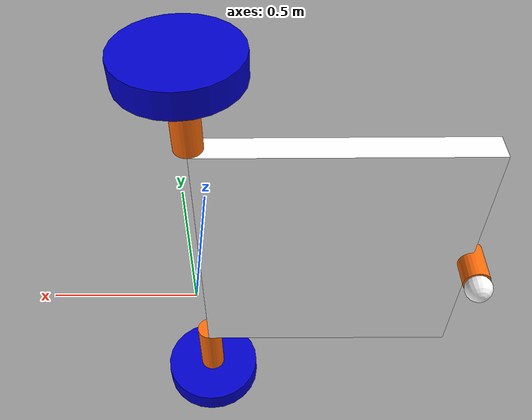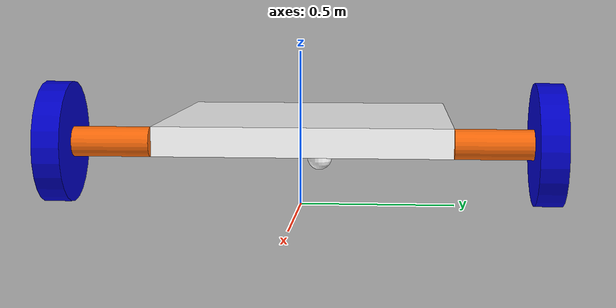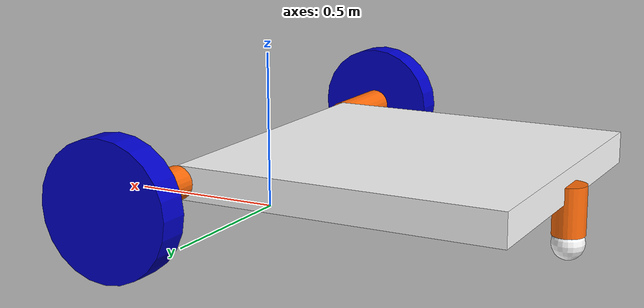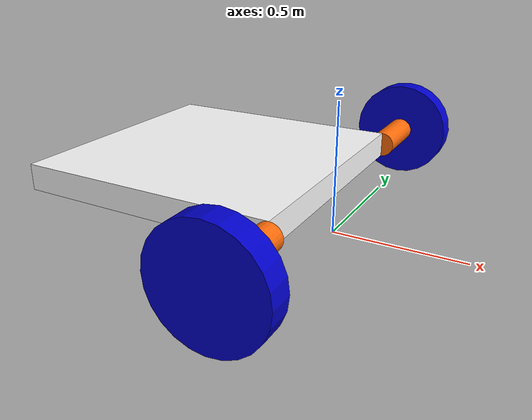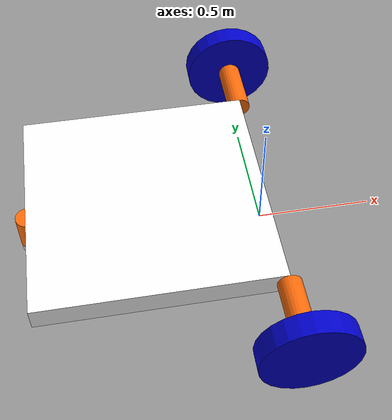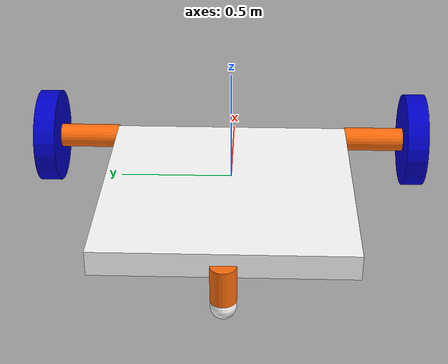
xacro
<?xml version="1.0"?>
<robot name="rHomMover_1"
    xmlns:xacro="http://ros.org/wiki/xacro">

    <!-- Colors -->
    <material name="black">
      <color rgba="0.0 0.0 0.0 1.0"/>
    </material>

    <material name="dark">
        <color rgba="0.3 0.3 0.3 1.0"/>
    </material>

    <material name="light_black">
        <color rgba="0.4 0.4 0.4 1.0"/>
    </material>

    <material name="blue">
        <color rgba="0.0 0.0 0.8 1.0"/>
    </material>

    <material name="green">
        <color rgba="0.0 0.8 0.0 1.0"/>
    </material>

    <material name="grey">
        <color rgba="0.5 0.5 0.5 1.0"/>
    </material>

    <material name="orange">
        <color rgba="1.0 0.4235 0.0392 1.0"/>
    </material>

    <material name="brown">
        <color rgba="0.8706 0.8118 0.7647 1.0"/>
    </material>

    <material name="red">
        <color rgba="0.8 0.0 0.0 1.0"/>
    </material>

    <material name="white">
        <color rgba="1.0 1.0 1.0 1.0"/>
    </material>

    <!-- 주요 기하 변수 -->
    <xacro:property name ="W_B" value="1.0"/>
    <xacro:property name ="L_B" value="1.0"/>
    <xacro:property name ="T_B" value="0.1"/>
    <xacro:property name ="L_a" value="0.3"/>
    <xacro:property name ="D_a" value="0.1"/>
    <xacro:property name ="W_w" value="0.09"/>
    <xacro:property name ="D_w" value="0.4"/>
    <xacro:property name ="H" value="${D_w /2}"/>

    <!-- BASE -->
    <!-- 이거 왜 이렇게 분리하는지는 모르겠는데 일단 참고 사이트에서 이케 하길래 따라함 -->
    <link name="base_link">
    </link>

    <!-- BODY LINK -->
    <joint name="body_joint" type="fixed">
        <parent link="base_link"/>
        <child link="body"/>
    </joint>

    <link name="body">
        <visual>
            <origin xyz="-${L_B/2} 0 ${H}"/>
            <geometry>
                <box size="${L_B} ${W_B} ${T_B}"/>
            </geometry>
            <material name="white"/>
        </visual>
        <collision>
            <origin xyz="-${L_B/2} 0 ${H}"/>
            <geometry>
                <box size="${L_B} ${W_B} ${T_B}"/>
            </geometry>
        </collision>
    </link>

    <!-- 오른쪽 팔+바퀴 -->
    <joint name="right_arm_joint" type="continuous">
        <parent link="body"/>
        <child link="right_arm"/>
        <origin xyz="0 -${W_B/2} ${D_w/2}"/>
        <axis xyz = "0 0 1"/>
    </joint>

    <link name="right_arm">
        <visual>
            <origin xyz = "0 -${L_a/2} 0" rpy="${pi/2} 0 0"/>
            <geometry>
                <cylinder radius="${D_a/2}" length="${L_a}"/>
            </geometry>
            <material name="orange"/>
        </visual>
    </link>

    <joint name="right_wheel_joint" type="continuous">
        <parent link ="right_arm"/>
        <child link="right_wheel"/>
        <origin xyz="0 -${L_a} 0"/>
        <axis xyz = "0 1 0"/>
    </joint>

    <link name="right_wheel">
        <visual>
            <origin xyz="0 0 0" rpy="${pi/2} 0 0"/>
            <geometry>
                <cylinder radius="${D_w/2}" length="${W_w}"/>
            </geometry>
            <material name="blue"/>
        </visual>
        <collision>
            <origin xyz="0 0 0" rpy="${pi/2} 0 0"/>
            <geometry>
                <cylinder radius="${D_w/2}" length="${W_w}"/>
            </geometry>
        </collision>
    </link>

    <!-- 왼쪽 팔+바퀴 -->
    <joint name="left_arm_joint" type="continuous">
        <parent link="body"/>
        <child link="left_arm"/>
        <origin xyz="0 ${W_B/2} ${D_w/2}"/>
        <axis xyz = "0 0 -1"/>
    </joint>

    <link name="left_arm">
        <visual>
            <origin xyz = "0 ${L_a/2} 0" rpy="-${pi/2} 0 0"/>
            <geometry>
                <cylinder radius="${D_a/2}" length="${L_a}"/>
            </geometry>
            <material name="orange"/>
        </visual>
    </link>

    <joint name="left_wheel_joint" type="continuous">
        <parent link ="left_arm"/>
        <child link="left_wheel"/>
        <origin xyz="0 ${L_a} 0"/>
        <axis xyz = "0 1 0"/>
    </joint>

    <link name="left_wheel">
        <visual>
            <origin xyz="0 0 0" rpy="-${pi/2} 0 0"/>
            <geometry>
                <cylinder radius="${D_w/2}" length="${W_w}"/>
            </geometry>
            <material name="blue"/>
        </visual>
        <collision>
            <origin xyz="0 0 0" rpy="-${pi/2} 0 0"/>
            <geometry>
                <cylinder radius="${D_w/2}" length="${W_w}"/>
            </geometry>
        </collision>
    </link>

    <!-- 뒤쪽 받침대 -->
    <joint name="tail_joint" type="fixed">
        <parent link="body"/>
        <child link="tail"/>
        <origin xyz="-${L_B} 0 ${D_w/2}"/>
    </joint>

    <link name="tail">
        <visual>
            <origin xyz = "0 0 -${H/2-D_a/4}" rpy="0 0 0"/>
            <geometry>
                <cylinder radius="${D_a/2}" length="${H-D_a/2}"/>
            </geometry>
            <material name="orange"/>
        </visual>
        <collision>
            <origin xyz = "0 0 -${H/2-D_a/4}" rpy="0 0 0"/>
            <geometry>
                <cylinder radius="${D_a/2}" length="${H-D_a/2}"/>
            </geometry>
        </collision>
    </link>

    <joint name="tail_caster_joint" type="fixed">
        <parent link ="tail"/>
        <child link="caster"/>
        <origin xyz="0 0 -${H-D_a/4}"/>
    </joint>

    <link name="caster">
        <visual>
            <origin xyz="0 0 0" rpy="0 0 0"/>
            <geometry>
                <sphere radius="${D_a/2}"/>
            </geometry>
            <material name="white"/>
        </visual>
        <collision>
            <origin xyz="0 0 0" rpy="0 0 0"/>
            <geometry>
                <sphere radius="${D_a/2}"/>
            </geometry>
        </collision>
    </link>

</robot>
